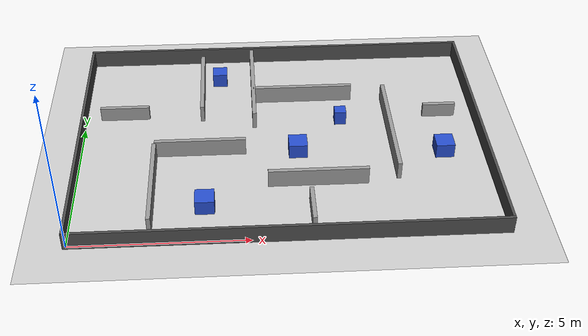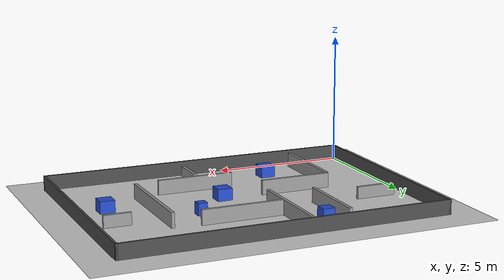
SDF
<?xml version="1.0" ?>
<sdf version="1.6">
  <world name="ask3_lab">

    <physics type="ode">
      <real_time_update_rate>1000.0</real_time_update_rate>
      <max_step_size>0.001</max_step_size>
      <real_time_factor>1.0</real_time_factor>
      <ode>
        <solver>
          <type>quick</type>
          <iters>150</iters>
          <sor>1.4</sor>
        </solver>
        <constraints>
          <cfm>0.00001</cfm>
          <erp>0.2</erp>
          <contact_max_correcting_vel>2000.0</contact_max_correcting_vel>
          <contact_surface_layer>0.01</contact_surface_layer>
        </constraints>
      </ode>
    </physics>

    <include><uri>model://sun</uri></include>
    <include><uri>model://ground_plane</uri></include>

    <scene>
      <shadows>false</shadows>
      <ambient>0.55 0.55 0.55 1</ambient>
    </scene>

    <gui fullscreen="0">
      <camera name="user_camera">
        <pose>6.0 4.2 16.0 0 1.5708 0</pose>
        <view_controller>orbit</view_controller>
      </camera>
    </gui>

    <model name="ask3_lab_map">
      <static>true</static>
      <pose>0 0 0 0 0 0</pose>
    <link name="outer_south">
      <pose>6.000 -0.040 0.275 0 0 0</pose>
      <collision name="outer_south_collision">
        <geometry>
          <box><size>12.160 0.080 0.550</size></box>
        </geometry>
      </collision>
      <visual name="outer_south_visual">
        <geometry>
          <box><size>12.160 0.080 0.550</size></box>
        </geometry>
        <material>
          <script>
            <uri>file://media/materials/scripts/gazebo.material</uri>
            <name>Gazebo/DarkGrey</name>
          </script>
        </material>
      </visual>
    </link>
    <link name="outer_north">
      <pose>6.000 8.540 0.275 0 0 0</pose>
      <collision name="outer_north_collision">
        <geometry>
          <box><size>12.160 0.080 0.550</size></box>
        </geometry>
      </collision>
      <visual name="outer_north_visual">
        <geometry>
          <box><size>12.160 0.080 0.550</size></box>
        </geometry>
        <material>
          <script>
            <uri>file://media/materials/scripts/gazebo.material</uri>
            <name>Gazebo/DarkGrey</name>
          </script>
        </material>
      </visual>
    </link>
    <link name="outer_west">
      <pose>-0.040 4.250 0.275 0 0 0</pose>
      <collision name="outer_west_collision">
        <geometry>
          <box><size>0.080 8.660 0.550</size></box>
        </geometry>
      </collision>
      <visual name="outer_west_visual">
        <geometry>
          <box><size>0.080 8.660 0.550</size></box>
        </geometry>
        <material>
          <script>
            <uri>file://media/materials/scripts/gazebo.material</uri>
            <name>Gazebo/DarkGrey</name>
          </script>
        </material>
      </visual>
    </link>
    <link name="outer_east">
      <pose>12.040 4.250 0.275 0 0 0</pose>
      <collision name="outer_east_collision">
        <geometry>
          <box><size>0.080 8.660 0.550</size></box>
        </geometry>
      </collision>
      <visual name="outer_east_visual">
        <geometry>
          <box><size>0.080 8.660 0.550</size></box>
        </geometry>
        <material>
          <script>
            <uri>file://media/materials/scripts/gazebo.material</uri>
            <name>Gazebo/DarkGrey</name>
          </script>
        </material>
      </visual>
    </link>
    <link name="wall_left_spine">
      <pose>2.200 2.000 0.275 0 0 0</pose>
      <collision name="wall_left_spine_collision">
        <geometry>
          <box><size>0.120 3.200 0.550</size></box>
        </geometry>
      </collision>
      <visual name="wall_left_spine_visual">
        <geometry>
          <box><size>0.120 3.200 0.550</size></box>
        </geometry>
        <material>
          <script>
            <uri>file://media/materials/scripts/gazebo.material</uri>
            <name>Gazebo/Grey</name>
          </script>
        </material>
      </visual>
    </link>
    <link name="wall_lower_gate">
      <pose>3.550 3.700 0.275 0 0 0</pose>
      <collision name="wall_lower_gate_collision">
        <geometry>
          <box><size>2.700 0.120 0.550</size></box>
        </geometry>
      </collision>
      <visual name="wall_lower_gate_visual">
        <geometry>
          <box><size>2.700 0.120 0.550</size></box>
        </geometry>
        <material>
          <script>
            <uri>file://media/materials/scripts/gazebo.material</uri>
            <name>Gazebo/Grey</name>
          </script>
        </material>
      </visual>
    </link>
    <link name="wall_mid_spine">
      <pose>5.200 6.650 0.275 0 0 0</pose>
      <collision name="wall_mid_spine_collision">
        <geometry>
          <box><size>0.120 3.500 0.550</size></box>
        </geometry>
      </collision>
      <visual name="wall_mid_spine_visual">
        <geometry>
          <box><size>0.120 3.500 0.550</size></box>
        </geometry>
        <material>
          <script>
            <uri>file://media/materials/scripts/gazebo.material</uri>
            <name>Gazebo/Grey</name>
          </script>
        </material>
      </visual>
    </link>
    <link name="wall_lower_band">
      <pose>6.950 2.200 0.275 0 0 0</pose>
      <collision name="wall_lower_band_collision">
        <geometry>
          <box><size>2.900 0.120 0.550</size></box>
        </geometry>
      </collision>
      <visual name="wall_lower_band_visual">
        <geometry>
          <box><size>2.900 0.120 0.550</size></box>
        </geometry>
        <material>
          <script>
            <uri>file://media/materials/scripts/gazebo.material</uri>
            <name>Gazebo/Grey</name>
          </script>
        </material>
      </visual>
    </link>
    <link name="wall_right_spine">
      <pose>9.300 4.250 0.275 0 0 0</pose>
      <collision name="wall_right_spine_collision">
        <geometry>
          <box><size>0.120 3.900 0.550</size></box>
        </geometry>
      </collision>
      <visual name="wall_right_spine_visual">
        <geometry>
          <box><size>0.120 3.900 0.550</size></box>
        </geometry>
        <material>
          <script>
            <uri>file://media/materials/scripts/gazebo.material</uri>
            <name>Gazebo/Grey</name>
          </script>
        </material>
      </visual>
    </link>
    <link name="wall_upper_band">
      <pose>6.750 6.250 0.275 0 0 0</pose>
      <collision name="wall_upper_band_collision">
        <geometry>
          <box><size>3.100 0.120 0.550</size></box>
        </geometry>
      </collision>
      <visual name="wall_upper_band_visual">
        <geometry>
          <box><size>3.100 0.120 0.550</size></box>
        </geometry>
        <material>
          <script>
            <uri>file://media/materials/scripts/gazebo.material</uri>
            <name>Gazebo/Grey</name>
          </script>
        </material>
      </visual>
    </link>
    <link name="wall_top_left">
      <pose>3.600 6.700 0.275 0 0 0</pose>
      <collision name="wall_top_left_collision">
        <geometry>
          <box><size>0.120 2.800 0.550</size></box>
        </geometry>
      </collision>
      <visual name="wall_top_left_visual">
        <geometry>
          <box><size>0.120 2.800 0.550</size></box>
        </geometry>
        <material>
          <script>
            <uri>file://media/materials/scripts/gazebo.material</uri>
            <name>Gazebo/Grey</name>
          </script>
        </material>
      </visual>
    </link>
    <link name="dead_end_left">
      <pose>1.200 5.550 0.225 0 0 0</pose>
      <collision name="dead_end_left_collision">
        <geometry>
          <box><size>1.500 0.120 0.450</size></box>
        </geometry>
      </collision>
      <visual name="dead_end_left_visual">
        <geometry>
          <box><size>1.500 0.120 0.450</size></box>
        </geometry>
        <material>
          <script>
            <uri>file://media/materials/scripts/gazebo.material</uri>
            <name>Gazebo/Grey</name>
          </script>
        </material>
      </visual>
    </link>
    <link name="dead_end_right">
      <pose>10.950 5.250 0.225 0 0 0</pose>
      <collision name="dead_end_right_collision">
        <geometry>
          <box><size>1.000 0.120 0.450</size></box>
        </geometry>
      </collision>
      <visual name="dead_end_right_visual">
        <geometry>
          <box><size>1.000 0.120 0.450</size></box>
        </geometry>
        <material>
          <script>
            <uri>file://media/materials/scripts/gazebo.material</uri>
            <name>Gazebo/Grey</name>
          </script>
        </material>
      </visual>
    </link>
    <link name="lower_slalom">
      <pose>6.700 0.950 0.225 0 0 0</pose>
      <collision name="lower_slalom_collision">
        <geometry>
          <box><size>0.120 1.250 0.450</size></box>
        </geometry>
      </collision>
      <visual name="lower_slalom_visual">
        <geometry>
          <box><size>0.120 1.250 0.450</size></box>
        </geometry>
        <material>
          <script>
            <uri>file://media/materials/scripts/gazebo.material</uri>
            <name>Gazebo/Grey</name>
          </script>
        </material>
      </visual>
    </link>
    <link name="island_start_side">
      <pose>3.700 1.350 0.225 0 0 0</pose>
      <collision name="island_start_side_collision">
        <geometry>
          <box><size>0.550 0.550 0.450</size></box>
        </geometry>
      </collision>
      <visual name="island_start_side_visual">
        <geometry>
          <box><size>0.550 0.550 0.450</size></box>
        </geometry>
        <material>
          <script>
            <uri>file://media/materials/scripts/gazebo.material</uri>
            <name>Gazebo/Blue</name>
          </script>
        </material>
      </visual>
    </link>
    <link name="island_center_low">
      <pose>6.450 3.650 0.225 0 0 0</pose>
      <collision name="island_center_low_collision">
        <geometry>
          <box><size>0.550 0.550 0.450</size></box>
        </geometry>
      </collision>
      <visual name="island_center_low_visual">
        <geometry>
          <box><size>0.550 0.550 0.450</size></box>
        </geometry>
        <material>
          <script>
            <uri>file://media/materials/scripts/gazebo.material</uri>
            <name>Gazebo/Blue</name>
          </script>
        </material>
      </visual>
    </link>
    <link name="island_center_high">
      <pose>7.850 5.100 0.225 0 0 0</pose>
      <collision name="island_center_high_collision">
        <geometry>
          <box><size>0.350 0.350 0.450</size></box>
        </geometry>
      </collision>
      <visual name="island_center_high_visual">
        <geometry>
          <box><size>0.350 0.350 0.450</size></box>
        </geometry>
        <material>
          <script>
            <uri>file://media/materials/scripts/gazebo.material</uri>
            <name>Gazebo/Blue</name>
          </script>
        </material>
      </visual>
    </link>
    <link name="island_right_low">
      <pose>10.800 3.450 0.225 0 0 0</pose>
      <collision name="island_right_low_collision">
        <geometry>
          <box><size>0.550 0.550 0.450</size></box>
        </geometry>
      </collision>
      <visual name="island_right_low_visual">
        <geometry>
          <box><size>0.550 0.550 0.450</size></box>
        </geometry>
        <material>
          <script>
            <uri>file://media/materials/scripts/gazebo.material</uri>
            <name>Gazebo/Blue</name>
          </script>
        </material>
      </visual>
    </link>
    <link name="island_top_left">
      <pose>4.150 7.350 0.225 0 0 0</pose>
      <collision name="island_top_left_collision">
        <geometry>
          <box><size>0.450 0.450 0.450</size></box>
        </geometry>
      </collision>
      <visual name="island_top_left_visual">
        <geometry>
          <box><size>0.450 0.450 0.450</size></box>
        </geometry>
        <material>
          <script>
            <uri>file://media/materials/scripts/gazebo.material</uri>
            <name>Gazebo/Blue</name>
          </script>
        </material>
      </visual>
    </link>
    </model>
  </world>
</sdf>
